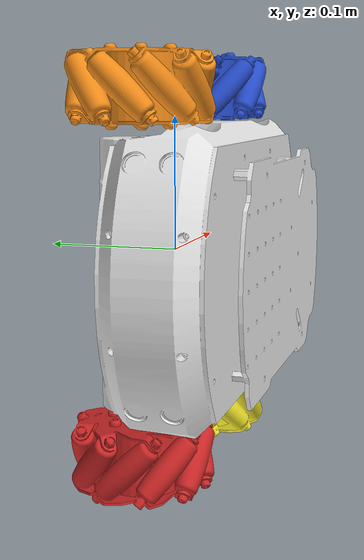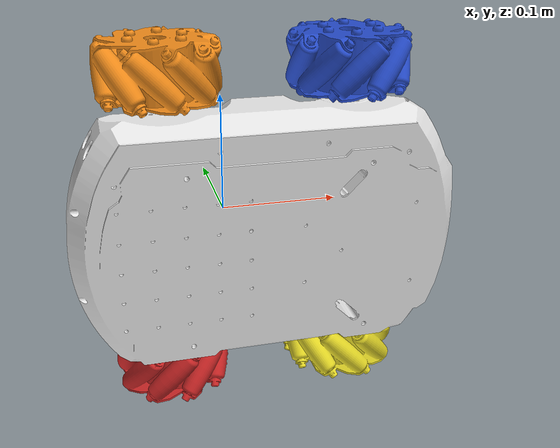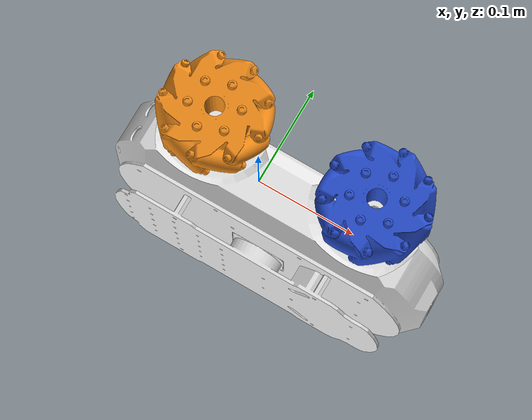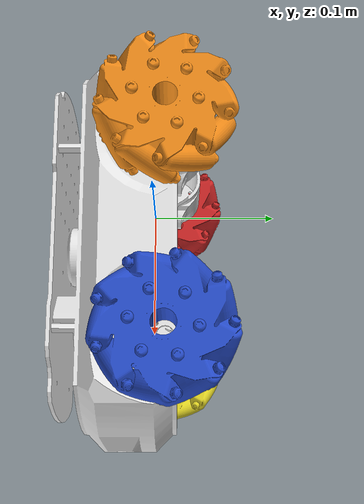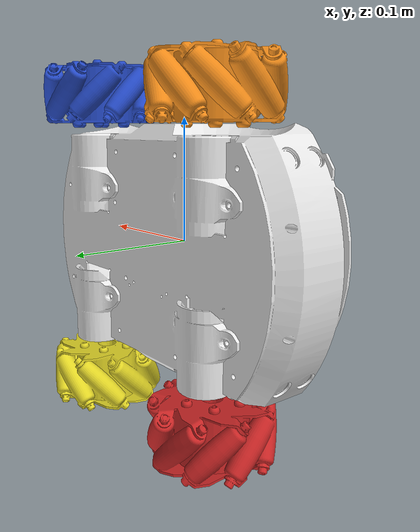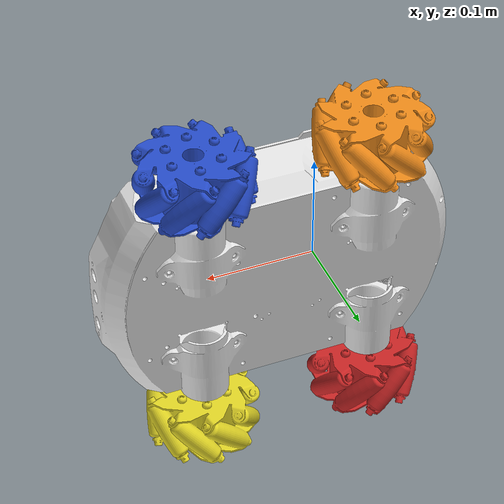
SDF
<sdf version='1.11'>
  <model name='mirte_master_description'>
    <link name='base_link'>
      <inertial>
        <pose>0.04514567324141399 -0.03087181190532522 -0.01104017425208419 0 0 0</pose>
        <mass>5.4952981052132737</mass>
        <inertia>
          <ixx>0.0077531026123911304</ixx>
          <ixy>0.001134699826195447</ixy>
          <ixz>-2.2072842225120091e-05</ixz>
          <iyy>0.0130002134562828</iyy>
          <iyz>3.3185373732169813e-05</iyz>
          <izz>0.012517795814061049</izz>
        </inertia>
      </inertial>
      <visual name='base_link_visual'>
        <pose>0 0 0 0 0 0</pose>
        <geometry>
          <mesh>
            <scale>1 1 1</scale>
            <uri>model://mirte_master_description/meshes/Base.STL</uri>
          </mesh>
        </geometry>
        <material>
          <script>
            <name>Gazebo/White</name>
            <uri>file://media/materials/scripts/gazebo.material</uri>
          </script>
          <diffuse>0.941176474 0.941176474 0.941176474 1</diffuse>
          <ambient>0.941176474 0.941176474 0.941176474 1</ambient>
        </material>
      </visual>
      <gravity>true</gravity>
    </link>
    <joint name='front_left_wheel_joint' type='revolute'>
      <pose relative_to='base_link'>0.11217119016317489 0.010031890428775231 0.096102512091587419 1.5707963267949003 0 2.6684300243442898e-05</pose>
      <parent>base_link</parent>
      <child>front_left_wheel</child>
      <axis>
        <xyz>0 1 0</xyz>
        <limit>
          <lower>-inf</lower>
          <upper>inf</upper>
        </limit>
        <dynamics>
          <spring_reference>0</spring_reference>
          <spring_stiffness>0</spring_stiffness>
        </dynamics>
      </axis>
    </joint>
    <link name='front_left_wheel'>
      <pose relative_to='front_left_wheel_joint'>0 0 0 0 0 0</pose>
      <inertial>
        <pose>0 0.025000000000000001 0 1.5707963267948959 0 0</pose>
        <mass>0.10000000000000001</mass>
        <inertia>
          <ixx>0.00013156250000000001</ixx>
          <ixy>0</ixy>
          <ixz>0</ixz>
          <iyy>0.00013156250000000001</iyy>
          <iyz>0</iyz>
          <izz>0.00013156250000000001</izz>
        </inertia>
      </inertial>
      <collision name='front_left_wheel_collision'>
        <pose>0 0.025000000000000001 0 1.5707963267948959 0 0</pose>
        <geometry>
          <sphere>
            <radius>0.050000000000000003</radius>
          </sphere>
        </geometry>
        <surface>
          <contact>
            <ode/>
          </contact>
          <friction>
            <ode>
              <mu>1</mu>
              <mu2>0</mu2>
              <fdir1>1 0 1</fdir1>
            </ode>
          </friction>
        </surface>
      </collision>
      <visual name='front_left_wheel_visual'>
        <pose>0 0 0 0 0 0</pose>
        <geometry>
          <mesh>
            <scale>1 1 1</scale>
            <uri>model://mirte_master_description/meshes/BR.STL</uri>
          </mesh>
        </geometry>
        <material>
          <script>
            <name>Gazebo/Blue</name>
            <uri>file://media/materials/scripts/gazebo.material</uri>
          </script>
          <diffuse>0.990199983 1 1 1</diffuse>
          <ambient>0.990199983 1 1 1</ambient>
        </material>
      </visual>
      <self_collide>false</self_collide>
      <gravity>true</gravity>
    </link>
    <joint name='front_right_wheel_joint' type='revolute'>
      <pose relative_to='base_link'>0.11217119016317489 0.010031890428775969 -0.11889748790841249 1.5707963267949003 0 2.6684300243442898e-05</pose>
      <parent>base_link</parent>
      <child>front_right_wheel</child>
      <axis>
        <xyz>0 1 0</xyz>
        <limit>
          <lower>-inf</lower>
          <upper>inf</upper>
        </limit>
        <dynamics>
          <spring_reference>0</spring_reference>
          <spring_stiffness>0</spring_stiffness>
        </dynamics>
      </axis>
    </joint>
    <link name='front_right_wheel'>
      <pose relative_to='front_right_wheel_joint'>0 0 0 0 0 0</pose>
      <inertial>
        <pose>0 -0.025000000000000001 0 1.5707963267948959 0 0</pose>
        <mass>0.10000000000000001</mass>
        <inertia>
          <ixx>0.00013156250000000001</ixx>
          <ixy>0</ixy>
          <ixz>0</ixz>
          <iyy>0.00013156250000000001</iyy>
          <iyz>0</iyz>
          <izz>0.00013156250000000001</izz>
        </inertia>
      </inertial>
      <collision name='front_right_wheel_collision'>
        <pose>0 -0.025000000000000001 0 1.5707963267948959 0 0</pose>
        <geometry>
          <sphere>
            <radius>0.050000000000000003</radius>
          </sphere>
        </geometry>
        <surface>
          <contact>
            <ode/>
          </contact>
          <friction>
            <ode>
              <mu>1</mu>
              <mu2>0</mu2>
              <fdir1>1 0 -1</fdir1>
            </ode>
          </friction>
        </surface>
      </collision>
      <visual name='front_right_wheel_visual'>
        <pose>0 0 0 0 0 0</pose>
        <geometry>
          <mesh>
            <scale>1 1 1</scale>
            <uri>model://mirte_master_description/meshes/BL.STL</uri>
          </mesh>
        </geometry>
        <material>
          <script>
            <name>Gazebo/Yellow</name>
            <uri>file://media/materials/scripts/gazebo.material</uri>
          </script>
          <diffuse>0.990199983 1 1 1</diffuse>
          <ambient>0.990199983 1 1 1</ambient>
        </material>
      </visual>
      <self_collide>false</self_collide>
      <gravity>true</gravity>
    </link>
    <joint name='rear_left_wheel_joint' type='revolute'>
      <pose relative_to='base_link'>-0.048834809779502768 0.010027594096330569 0.14610251209158739 1.5707963267949003 0 2.6684300243442898e-05</pose>
      <parent>base_link</parent>
      <child>rear_left_wheel</child>
      <axis>
        <xyz>0 1 0</xyz>
        <limit>
          <lower>-inf</lower>
          <upper>inf</upper>
        </limit>
        <dynamics>
          <spring_reference>0</spring_reference>
          <spring_stiffness>0</spring_stiffness>
        </dynamics>
      </axis>
    </joint>
    <link name='rear_left_wheel'>
      <pose relative_to='rear_left_wheel_joint'>0 0 0 0 0 0</pose>
      <inertial>
        <pose>0 -0.025000000000000001 0 1.5707963267948959 0 0</pose>
        <mass>0.10000000000000001</mass>
        <inertia>
          <ixx>0.00013156250000000001</ixx>
          <ixy>0</ixy>
          <ixz>0</ixz>
          <iyy>0.00013156250000000001</iyy>
          <iyz>0</iyz>
          <izz>0.00013156250000000001</izz>
        </inertia>
      </inertial>
      <collision name='rear_left_wheel_collision'>
        <pose>0 -0.025000000000000001 0 1.5707963267948959 0 0</pose>
        <geometry>
          <sphere>
            <radius>0.050000000000000003</radius>
          </sphere>
        </geometry>
        <surface>
          <contact>
            <ode/>
          </contact>
          <friction>
            <ode>
              <mu>1</mu>
              <mu2>0</mu2>
              <fdir1>1 0 -1</fdir1>
            </ode>
          </friction>
        </surface>
      </collision>
      <visual name='rear_left_wheel_visual'>
        <pose>0 0 0 0 0 0</pose>
        <geometry>
          <mesh>
            <scale>1 1 1</scale>
            <uri>model://mirte_master_description/meshes/BL.STL</uri>
          </mesh>
        </geometry>
        <material>
          <script>
            <name>Gazebo/Orange</name>
            <uri>file://media/materials/scripts/gazebo.material</uri>
          </script>
          <diffuse>0.990199983 1 1 1</diffuse>
          <ambient>0.990199983 1 1 1</ambient>
        </material>
      </visual>
      <self_collide>false</self_collide>
      <gravity>true</gravity>
    </link>
    <joint name='rear_right_wheel_joint' type='revolute'>
      <pose relative_to='base_link'>-0.048834809779502789 0.01002759409633169 -0.16889748790841261 1.5707963267949003 0 2.6684300243442898e-05</pose>
      <parent>base_link</parent>
      <child>rear_right_wheel</child>
      <axis>
        <xyz>0 1 0</xyz>
        <limit>
          <lower>-inf</lower>
          <upper>inf</upper>
        </limit>
        <dynamics>
          <spring_reference>0</spring_reference>
          <spring_stiffness>0</spring_stiffness>
        </dynamics>
      </axis>
    </joint>
    <link name='rear_right_wheel'>
      <pose relative_to='rear_right_wheel_joint'>0 0 0 0 0 0</pose>
      <inertial>
        <pose>0 0.025000000000000001 0 1.5707963267948959 0 0</pose>
        <mass>0.10000000000000001</mass>
        <inertia>
          <ixx>0.00013156250000000001</ixx>
          <ixy>0</ixy>
          <ixz>0</ixz>
          <iyy>0.00013156250000000001</iyy>
          <iyz>0</iyz>
          <izz>0.00013156250000000001</izz>
        </inertia>
      </inertial>
      <collision name='rear_right_wheel_collision'>
        <pose>0 0.025000000000000001 0 1.5707963267948959 0 0</pose>
        <geometry>
          <sphere>
            <radius>0.050000000000000003</radius>
          </sphere>
        </geometry>
        <surface>
          <contact>
            <ode/>
          </contact>
          <friction>
            <ode>
              <mu>1</mu>
              <mu2>0</mu2>
              <fdir1>1 0 1</fdir1>
            </ode>
          </friction>
        </surface>
      </collision>
      <visual name='rear_right_wheel_visual'>
        <pose>0 0 0 0 0 0</pose>
        <geometry>
          <mesh>
            <scale>1 1 1</scale>
            <uri>model://mirte_master_description/meshes/BR.STL</uri>
          </mesh>
        </geometry>
        <material>
          <script>
            <name>Gazebo/Red</name>
            <uri>file://media/materials/scripts/gazebo.material</uri>
          </script>
          <diffuse>0.990199983 1 1 1</diffuse>
          <ambient>0.990199983 1 1 1</ambient>
        </material>
      </visual>
      <self_collide>false</self_collide>
      <gravity>true</gravity>
    </link>
    <plugin name='gz_ros2_control::GazeboSimROS2ControlPlugin' filename='libgz_ros2_control-system.so'>
      <parameters>/home/robohouse/mirte_ws/install/mirte_base_control/share/mirte_base_control/config/mirte_base_control_no_pid.yaml</parameters>
    </plugin>
    <plugin name='gz::sim::systems::MecanumDrive' filename='gz-sim-mecanum-drive-system'>
      <front_left_joint>front_left_wheel_joint</front_left_joint>
      <front_right_joint>front_right_wheel_joint</front_right_joint>
      <back_left_joint>rear_left_wheel_joint</back_left_joint>
      <back_right_joint>rear_right_wheel_joint</back_right_joint>
      <wheel_separation>0.28</wheel_separation>
      <wheelbase>0.28</wheelbase>
      <wheel_radius>0.05</wheel_radius>
      <topic>cmd_vel</topic>
      <odom_topic>odom</odom_topic>
      <frame_id>odom</frame_id>
      <child_frame_id>base_link</child_frame_id>
    </plugin>
    <plugin name='gz::sim::systems::PosePublisher' filename='gz-sim-pose-publisher-system'>
      <publish_link_pose>false</publish_link_pose>
      <publish_collision_pose>false</publish_collision_pose>
      <publish_visual_pose>false</publish_visual_pose>
      <publish_nested_model_pose>false</publish_nested_model_pose>
      <publish_model_pose>true</publish_model_pose>
      <update_frequency>1</update_frequency>
    </plugin>
    <frame name='Wheels_joint' attached_to='MIRTE_Master'>
      <pose>0.031669871302751201 -0.052970257715016997 -0.011397487908412799 1.5707963267949003 -1.6940658945086007e-21 2.6684300243442891e-05</pose>
    </frame>
    <frame name='Wheels' attached_to='Wheels_joint'>
      <pose>0 0 0 0 0 0</pose>
    </frame>
    <frame name='Base_joint' attached_to='base_link'>
      <pose>0 0 0 0 0 0</pose>
    </frame>
    <frame name='MIRTE_Master' attached_to='Base_joint'>
      <pose>0 0 0 0 0 0</pose>
    </frame>
    <frame name='LiDar_joint' attached_to='base_link'>
      <pose>0.031669999999999997 -0.063182000000000002 -0.011396999999999999 1.5708 0 0</pose>
    </frame>
    <frame name='LiDar' attached_to='LiDar_joint'>
      <pose>0 0 0 0 0 0</pose>
    </frame>
  </model>
</sdf>
